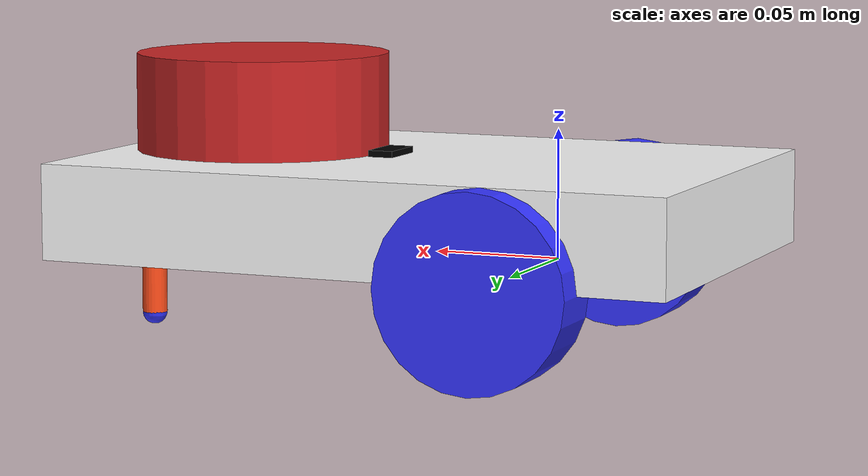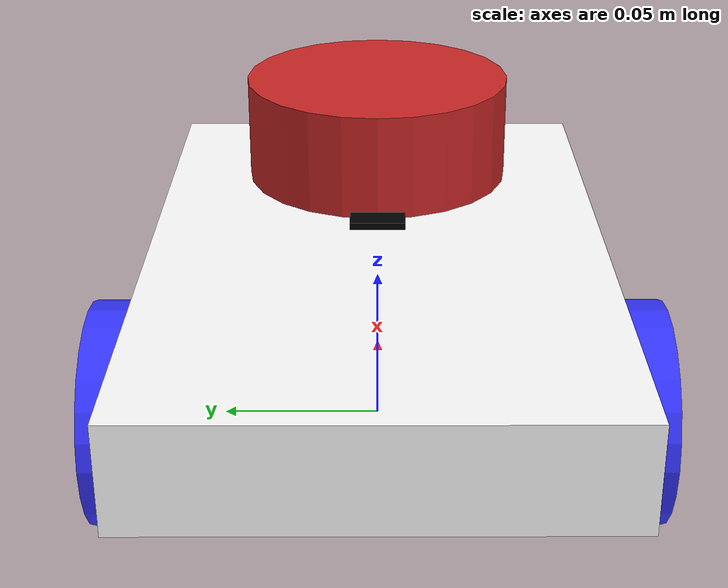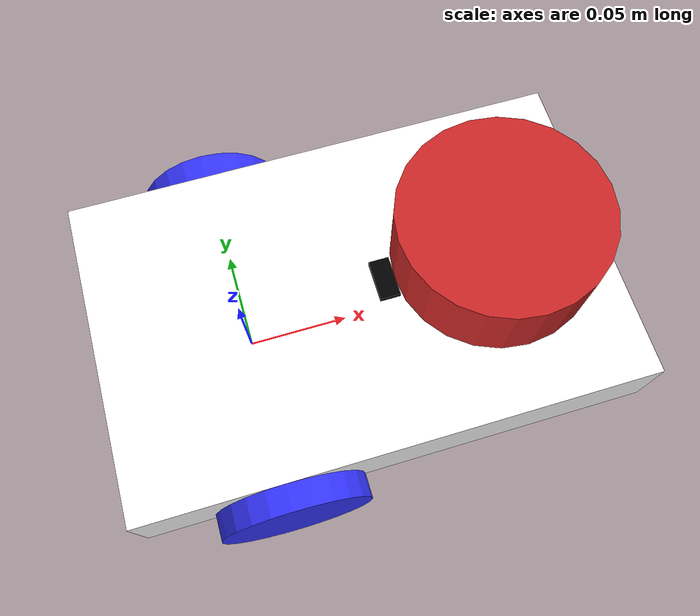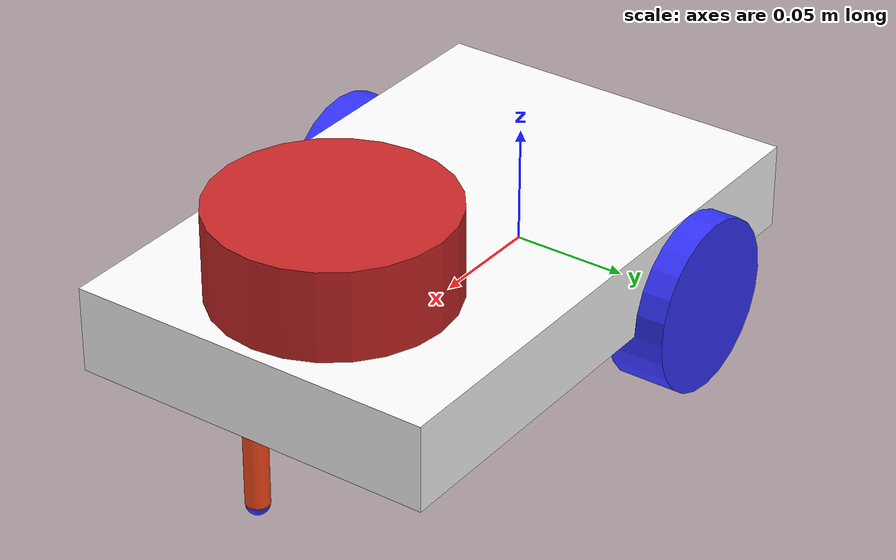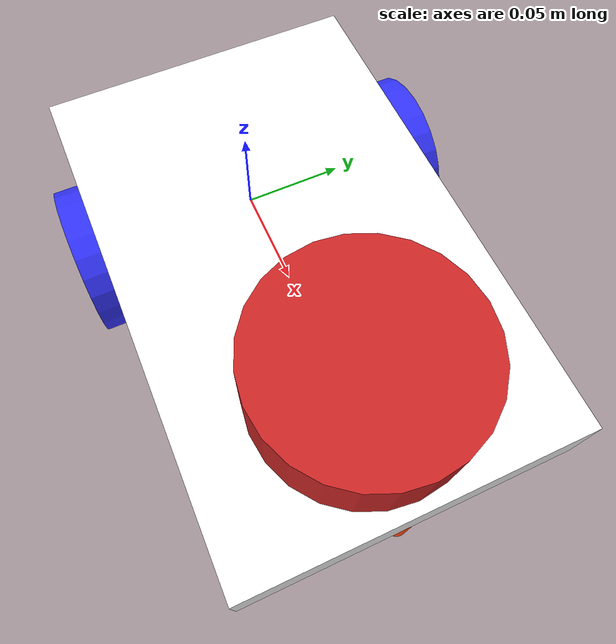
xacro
<?xml version="1.0"?>
<robot xmlns:xacro="http://www.ros.org/wiki/xacro"  name="robot">

    <xacro:include filename="robot_core.xacro" />
    <xacro:include filename="gazebo_control.xacro" />
    <xacro:include filename="lidar.xacro" />
    <xacro:include filename="imu.xacro" />  <!-- Include IMU Xacro -->

</robot>

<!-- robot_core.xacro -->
<robot xmlns:xacro="http://www.ros.org/wiki/xacro">

    <xacro:include filename="inertial_macros.xacro" />

    <!-- Define parameters for chassis dimensions and position -->
    <xacro:property name="chassis_length" value="0.25"/>
    <xacro:property name="chassis_width" value="0.16"/>
    <xacro:property name="chassis_height" value="0.037"/>
    <xacro:property name="chassis_x_offset" value="0.055"/>

    <!-- Parametrize wheel dimensions -->
    <xacro:property name="wheel_radius" value="0.037"/>
    <xacro:property name="wheel_length" value="0.025"/>

    <!-- Parametrize caster wheel shaft and caster wheel radii -->
    <xacro:property name="caster_wheel_shaft_radius" value="0.005"/>
    <xacro:property name="caster_wheel_radius" value="0.005"/>

    <material name="white">
        <color rgba="1 1 1 1"/>
    </material>

    <material name="orange">
        <color rgba="1 0.3 0.1 1"/>
    </material>

    <material name="blue">
        <color rgba="0.2 0.2 1 1"/>
    </material>

    <material name="black">
        <color rgba="0 0 0 1"/>
    </material>

    <link name="base_link">
    </link>

    <joint name="chassis_joint" type="fixed">
        <parent link="base_link"/>
        <child link="chassis"/>
        <origin xyz="0 0 0"/>
    </joint>

    <link name="chassis">
        <visual>
            <origin xyz="${chassis_x_offset} 0 ${chassis_height / 2}" rpy="0 0 0"/>
            <geometry>
                <box size="${chassis_length} ${chassis_width} ${chassis_height}"/>
            </geometry>
            <material name="white"/>
        </visual>
        <collision>
            <origin xyz="${chassis_x_offset} 0 ${chassis_height / 2}" rpy="0 0 0"/>
            <geometry>
                <box size="${chassis_length} ${chassis_width} ${chassis_height}"/>
            </geometry>
        </collision>
        <xacro:inertial_box mass="0.5" x="${chassis_length}" y="${chassis_width}" z="${chassis_height}">
            <origin xyz="${chassis_x_offset} 0 ${chassis_height}" rpy="0 0 0"/>
        </xacro:inertial_box>
    </link>

    <gazebo reference="chassis">
        <material>Gazebo/White</material>
    </gazebo>

    <!-- LEFT WHEEL -->
    <joint name="left_wheel_joint" type="continuous">
        <parent link="base_link"/>
        <child link="left_wheel"/>
        <origin xyz="0 0.08 0" rpy="-${pi/2} 0 0"/>
        <axis xyz="0 0 1"/>
    </joint>

    <link name="left_wheel">
        <visual>
            <geometry>
                <cylinder length="${wheel_length}" radius="${wheel_radius}" />
            </geometry>
            <material name="blue"/>
        </visual>
        <collision>
            <geometry>
                <cylinder length="${wheel_length}" radius="${wheel_radius}" />
            </geometry>
        </collision>
        <xacro:inertial_cylinder mass="0.1" length="${wheel_length}" radius="${wheel_radius}">
            <origin xyz="0 0 0" rpy="0 0 0"/>
        </xacro:inertial_cylinder>
    </link>
    <gazebo reference="left_wheel">
        <material>Gazebo/Yellow</material>
    </gazebo>

    <!-- RIGHT WHEEL -->
    <joint name="right_wheel_joint" type="continuous">
        <parent link="base_link"/>
        <child link="right_wheel"/>
        <origin xyz="0 -0.08 0" rpy="${pi/2} 0 0"/>
        <axis xyz="0 0 -1"/>
    </joint>

    <link name="right_wheel">
        <visual>
            <geometry>
                <cylinder length="${wheel_length}" radius="${wheel_radius}" />
            </geometry>
            <material name="blue"/>
        </visual>
        <collision>
            <geometry>
                <cylinder length="${wheel_length}" radius="${wheel_radius}" />
            </geometry>
        </collision>
        <xacro:inertial_cylinder mass="0.1" length="${wheel_length}" radius="${wheel_radius}">
            <origin xyz="0 0 0" rpy="0 0 0"/>
        </xacro:inertial_cylinder>
    </link>
    <gazebo reference="right_wheel">
        <material>Gazebo/Yellow</material>
    </gazebo>

    <!-- Caster wheel shaft -->
    <joint name="caster_wheel_shaft_joint" type="fixed">
        <parent link="chassis"/>
        <child link="caster_wheel_shaft"/>
        <!-- Reduce x by the caster_wheel_shaft_radius to align the shaft extremity with the chassis edge -->
        <origin xyz="${chassis_length / 2 + chassis_x_offset - caster_wheel_shaft_radius} 0 -0.016" rpy="0 0 0"/>
        <axis xyz="0 0 -1"/>
    </joint>

    <link name="caster_wheel_shaft">
        <visual>
            <geometry>
                <cylinder length="0.032" radius="${caster_wheel_shaft_radius}" />
            </geometry>
            <material name="orange"/>
        </visual>
        <collision>
            <geometry>
                <cylinder length="0.032" radius="${caster_wheel_shaft_radius}" />
            </geometry>
        </collision>
    </link>

    <!-- CASTER WHEEL -->
    <joint name="caster_wheel_joint" type="fixed">
        <parent link="caster_wheel_shaft"/>
        <child link="caster_wheel"/>
        <origin xyz="0 0 -0.016" rpy="0 0 0"/>
    </joint>

    <link name="caster_wheel">
        <visual>
            <geometry>
                <sphere radius="${caster_wheel_radius}" />
            </geometry>
            <material name="blue"/>
        </visual>
        <collision>
            <geometry>
                <sphere radius="${caster_wheel_radius}" />
            </geometry>
        </collision>
    </link>
    <gazebo reference="caster_wheel">
        <material>Gazebo/Black</material>
        <mu1 value="0.001"/>
        <mu2 value="0.001"/>
    </gazebo>

</robot>

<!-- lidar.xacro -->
<robot xmlns:xacro="http://www.ros.org/wiki/xacro" >

    <joint name="laser_joint" type="fixed">
        <parent link="chassis"/>
        <child link="laser_frame"/>
        <origin xyz="0.125 0 0.0555" rpy="0 0 3.14159"/>
    </joint>

    <link name="laser_frame">
        <visual>
            <geometry>
                <cylinder radius="0.05" length="0.04"/>
            </geometry>
            <material name="red"/>
        </visual>
        <collision>
            <geometry>
                <cylinder radius="0.05" length="0.04"/>
            </geometry>
        </collision>
        <xacro:inertial_cylinder mass="0.1" length="0.04" radius="0.05">
            <origin xyz="0 0 0" rpy="0 0 0"/>
        </xacro:inertial_cylinder>

        <gazebo reference="laser_frame">
            <material>Gazebo/Red</material>

            <sensor name="rplidar" type="ray">
            <!-- Position and orientation of the LIDAR relative to the base_link -->
            <pose>0.125 0 0.0555 0 0 0</pose>

            <!-- LIDAR properties -->
            <ray>
                <!-- Scan type (planar, horizontal) -->
                <scan>
                <horizontal>
                    <samples>360</samples>  <!-- RPLIDAR C1 has 360 samples (1-degree resolution) -->
                    <resolution>1</resolution>  <!-- Angular resolution in degrees -->
                    <min_angle>-3.14159</min_angle>  <!-- Min angle (-π for 180 degrees in radians) -->
                    <max_angle>3.14159</max_angle>  <!-- Max angle (π for 180 degrees in radians) -->
                </horizontal>
                </scan>

                <!-- Range properties -->
                <range>
                <min>0.15</min>   <!-- RPLIDAR C1 minimum range (0.15 meters) -->
                <max>6.0</max>   <!-- RPLIDAR C1 maximum range (6 meters) -->
                <resolution>0.01</resolution>  <!-- Range resolution (0.01 meters) -->
                </range>

                <!-- LIDAR noise -->
                <noise>
                <type>gaussian</type>
                <mean>0.0</mean>   <!-- Mean of the noise (usually 0 for Gaussian noise) -->
                <stddev>0.01</stddev>  <!-- Standard deviation of the noise (0.01 meters) -->
                </noise>
            </ray>
            </sensor>

        </gazebo>

    </link>
</robot>

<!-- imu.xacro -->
<robot xmlns:xacro="http://www.ros.org/wiki/xacro">

    <!-- IMU Joint -->
    <joint name="imu_joint" type="fixed">
        <parent link="chassis"/>  <!-- or your main body link -->
        <child link="imu_link"/>
        <origin xyz="0.07 0 0.037" rpy="0 0 0"/>  <!-- Adjust to the actual IMU location -->
    </joint>

    <!-- IMU Link -->
    <link name="imu_link">
        <visual>
            <geometry>
                <box size="0.01 0.02 0.005"/>  <!-- Approximate size of the BNO055 -->
            </geometry>
            <material name="black"/>
        </visual>
        <collision>
            <geometry>
                <box size="0.01 0.02 0.005"/>
            </geometry>
        </collision>
        <inertial>
            <mass value="0.02"/>
            <origin xyz="0 0 0" rpy="0 0 0"/>
            <inertia ixx="0.00001" ixy="0" ixz="0" iyy="0.00001" iyz="0" izz="0.00001"/>
        </inertial>

        <!-- Gazebo elements (only for simulation) -->
        <xacro:property name="use_simulation" value="false"/>
        <xacro:if value="${use_simulation}">
            <gazebo reference="imu_link">
                <sensor name="imu_sensor" type="imu">
                    <update_rate>50</update_rate>  <!-- Frequency of data updates -->
                    <pose>0 0 0 0 0 0</pose>
                    <imu>
                        <angular_velocity>
                            <x>0.001</x>
                            <y>0.001</y>
                            <z>0.001</z>
                        </angular_velocity>
                        <linear_acceleration>
                            <x>0.001</x>
                            <y>0.001</y>
                            <z>0.001</z>
                        </linear_acceleration>
                        <orientation>
                            <x>0.001</x>
                            <y>0.001</y>
                            <z>0.001</z>
                        </orientation>
                        <noise>
                            <type>gaussian</type>
                            <mean>0</mean>
                            <stddev>0.01</stddev>
                        </noise>
                    </imu>
                </sensor>
            </gazebo>
        </xacro:if>
    </link>

</robot>
